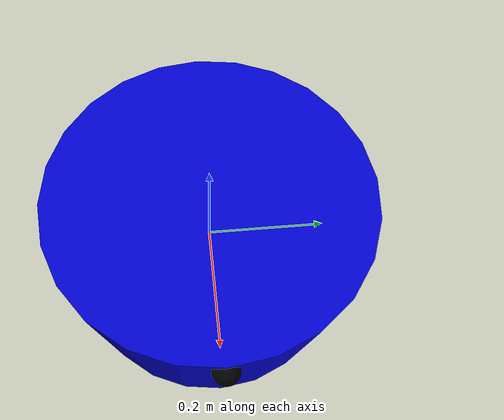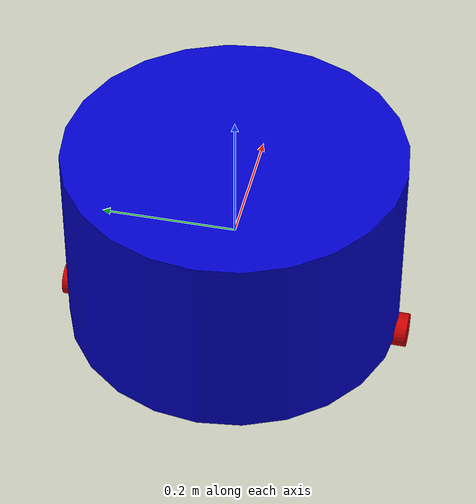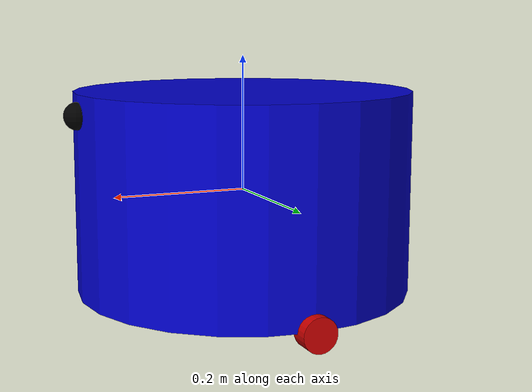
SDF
<?xml version='1.0'?>
<sdf version='1.7'>
  <model name='my_rb1_robot'>
    <link name='base_link'>
      <inertial>
        <pose>0 0 0 0 -0 0</pose>
        <mass>1</mass>
        <inertia>
          <ixx>1</ixx>
          <ixy>0</ixy>
          <ixz>0</ixz>
          <iyy>1</iyy>
          <iyz>0</iyz>
          <izz>1</izz>
        </inertia>
      </inertial>
      <self_collide>0</self_collide>
      <enable_wind>0</enable_wind>
      <kinematic>0</kinematic>
      <pose>0 0 0 -0 -0 -0</pose>
      <gravity>1</gravity>
      <visual name='base_link_visual'>
        <pose>0 0 0 0 -0 0</pose>
        <geometry>
          <cylinder>
            <length>0.3</length>
            <radius>0.25</radius>
          </cylinder>
        </geometry>
        <material>
          <shader type='pixel'>
            <normal_map>__default__</normal_map>
          </shader>
          <script>
            <name>ModelPreview_1::base_link::base_link_visual_MATERIAL_</name>
          </script>
          <ambient>0 0 0.8 1</ambient>
          <diffuse>0 0 0.8 1</diffuse>
          <specular>0 0 0.8 1</specular>
          <emissive>0 0 0.8 1</emissive>
        </material>
        <transparency>0</transparency>
        <cast_shadows>1</cast_shadows>
      </visual>
      <collision name='base_link_collision'>
        <laser_retro>0</laser_retro>
        <max_contacts>10</max_contacts>
        <pose>0 0 0 0 -0 0</pose>
        <geometry>
          <cylinder>
            <radius>0.25</radius>
            <length>0.3</length>
          </cylinder>
        </geometry>
        <surface>
          <friction>
            <ode>
              <mu>1</mu>
              <mu2>1</mu2>
              <fdir1>0 0 0</fdir1>
              <slip1>0</slip1>
              <slip2>0</slip2>
            </ode>
            <torsional>
              <coefficient>1</coefficient>
              <patch_radius>0</patch_radius>
              <surface_radius>0</surface_radius>
              <use_patch_radius>1</use_patch_radius>
              <ode>
                <slip>0</slip>
              </ode>
            </torsional>
          </friction>
          <bounce>
            <restitution_coefficient>0</restitution_coefficient>
            <threshold>1e+06</threshold>
          </bounce>
          <contact>
            <collide_without_contact>0</collide_without_contact>
            <collide_without_contact_bitmask>1</collide_without_contact_bitmask>
            <collide_bitmask>1</collide_bitmask>
            <ode>
              <soft_cfm>0</soft_cfm>
              <soft_erp>0.2</soft_erp>
              <kp>1e+13</kp>
              <kd>1</kd>
              <max_vel>0.01</max_vel>
              <min_depth>0</min_depth>
            </ode>
            <bullet>
              <split_impulse>1</split_impulse>
              <split_impulse_penetration_threshold>-0.01</split_impulse_penetration_threshold>
              <soft_cfm>0</soft_cfm>
              <soft_erp>0.2</soft_erp>
              <kp>1e+13</kp>
              <kd>1</kd>
            </bullet>
          </contact>
        </surface>
      </collision>
    </link>
    <link name='back_caster'>
      <pose>-0.1 -0 -0.15 -0 -0 -0</pose>
      <inertial>
        <pose>0 0 0 0 -0 0</pose>
        <mass>0.01</mass>
        <inertia>
          <ixx>0.0001</ixx>
          <ixy>0</ixy>
          <ixz>0</ixz>
          <iyy>0.0001</iyy>
          <iyz>0</iyz>
          <izz>0.0001</izz>
        </inertia>
      </inertial>
      <self_collide>0</self_collide>
      <enable_wind>0</enable_wind>
      <kinematic>0</kinematic>
      <gravity>1</gravity>
      <visual name='back_caster_visual'>
        <pose>0 0 0 0 -0 0</pose>
        <geometry>
          <sphere>
            <radius>0.025</radius>
          </sphere>
        </geometry>
        <material>
          <shader type='pixel'>
            <normal_map>__default__</normal_map>
          </shader>
          <script>
            <name>ModelPreview_1::back_caster::back_caster_visual_MATERIAL_</name>
          </script>
          <ambient>0 0 0 1</ambient>
          <diffuse>0 0 0 1</diffuse>
          <specular>0 0 0 1</specular>
          <emissive>0 0 0 1</emissive>
        </material>
        <transparency>0</transparency>
        <cast_shadows>1</cast_shadows>
      </visual>
      <collision name='back_caster_collision'>
        <laser_retro>0</laser_retro>
        <max_contacts>10</max_contacts>
        <pose>0 0 0 0 -0 0</pose>
        <geometry>
          <sphere>
            <radius>0.025</radius>
          </sphere>
        </geometry>
        <surface>
          <friction>
            <ode>
              <mu>1</mu>
              <mu2>1</mu2>
              <fdir1>0 0 0</fdir1>
              <slip1>0</slip1>
              <slip2>0</slip2>
            </ode>
            <torsional>
              <coefficient>1</coefficient>
              <patch_radius>0</patch_radius>
              <surface_radius>0</surface_radius>
              <use_patch_radius>1</use_patch_radius>
              <ode>
                <slip>0</slip>
              </ode>
            </torsional>
          </friction>
          <bounce>
            <restitution_coefficient>0</restitution_coefficient>
            <threshold>1e+06</threshold>
          </bounce>
          <contact>
            <collide_without_contact>0</collide_without_contact>
            <collide_without_contact_bitmask>1</collide_without_contact_bitmask>
            <collide_bitmask>1</collide_bitmask>
            <ode>
              <soft_cfm>0</soft_cfm>
              <soft_erp>0.2</soft_erp>
              <kp>1e+13</kp>
              <kd>1</kd>
              <max_vel>0.01</max_vel>
              <min_depth>0</min_depth>
            </ode>
            <bullet>
              <split_impulse>1</split_impulse>
              <split_impulse_penetration_threshold>-0.01</split_impulse_penetration_threshold>
              <soft_cfm>0</soft_cfm>
              <soft_erp>0.2</soft_erp>
              <kp>1e+13</kp>
              <kd>1</kd>
            </bullet>
          </contact>
        </surface>
      </collision>
    </link>
    <link name='front_caster'>
      <pose>0.1 0 -0.15 -0 -0 -0</pose>
      <inertial>
        <pose>0 0 0 0 -0 0</pose>
        <mass>0.01</mass>
        <inertia>
          <ixx>0.0001</ixx>
          <ixy>0</ixy>
          <ixz>0</ixz>
          <iyy>0.0001</iyy>
          <iyz>0</iyz>
          <izz>0.0001</izz>
        </inertia>
      </inertial>
      <self_collide>0</self_collide>
      <enable_wind>0</enable_wind>
      <kinematic>0</kinematic>
      <gravity>1</gravity>
      <visual name='front_caster_visual'>
        <pose>0 0 0 0 -0 0</pose>
        <geometry>
          <sphere>
            <radius>0.025</radius>
          </sphere>
        </geometry>
        <material>
          <shader type='pixel'>
            <normal_map>__default__</normal_map>
          </shader>
          <script>
            <name>ModelPreview_1::front_caster::front_caster_visual_MATERIAL_</name>
          </script>
          <ambient>0 0 0 1</ambient>
          <diffuse>0 0 0 1</diffuse>
          <specular>0 0 0 1</specular>
          <emissive>0 0 0 1</emissive>
        </material>
        <transparency>0</transparency>
        <cast_shadows>1</cast_shadows>
      </visual>
      <collision name='front_caster_collision'>
        <laser_retro>0</laser_retro>
        <max_contacts>10</max_contacts>
        <pose>0 0 0 0 -0 0</pose>
        <geometry>
          <sphere>
            <radius>0.025</radius>
          </sphere>
        </geometry>
        <surface>
          <friction>
            <ode>
              <mu>1</mu>
              <mu2>1</mu2>
              <fdir1>0 0 0</fdir1>
              <slip1>0</slip1>
              <slip2>0</slip2>
            </ode>
            <torsional>
              <coefficient>1</coefficient>
              <patch_radius>0</patch_radius>
              <surface_radius>0</surface_radius>
              <use_patch_radius>1</use_patch_radius>
              <ode>
                <slip>0</slip>
              </ode>
            </torsional>
          </friction>
          <bounce>
            <restitution_coefficient>0</restitution_coefficient>
            <threshold>1e+06</threshold>
          </bounce>
          <contact>
            <collide_without_contact>0</collide_without_contact>
            <collide_without_contact_bitmask>1</collide_without_contact_bitmask>
            <collide_bitmask>1</collide_bitmask>
            <ode>
              <soft_cfm>0</soft_cfm>
              <soft_erp>0.2</soft_erp>
              <kp>1e+13</kp>
              <kd>1</kd>
              <max_vel>0.01</max_vel>
              <min_depth>0</min_depth>
            </ode>
            <bullet>
              <split_impulse>1</split_impulse>
              <split_impulse_penetration_threshold>-0.01</split_impulse_penetration_threshold>
              <soft_cfm>0</soft_cfm>
              <soft_erp>0.2</soft_erp>
              <kp>1e+13</kp>
              <kd>1</kd>
            </bullet>
          </contact>
        </surface>
      </collision>
    </link>
    <link name='front_laser'>
      <pose>0.25 0 0.12 -0 -0 -0</pose>
      <inertial>
        <pose>0 0 0 0 -0 0</pose>
        <mass>0.01</mass>
        <inertia>
          <ixx>1e-05</ixx>
          <ixy>0</ixy>
          <ixz>0</ixz>
          <iyy>1e-05</iyy>
          <iyz>0</iyz>
          <izz>1e-05</izz>
        </inertia>
      </inertial>
      <self_collide>0</self_collide>
      <enable_wind>0</enable_wind>
      <kinematic>0</kinematic>
      <gravity>1</gravity>
      <visual name='front_laser_visual'>
        <pose>0 0 0 0 -0 0</pose>
        <geometry>
          <sphere>
            <radius>0.02</radius>
          </sphere>
        </geometry>
        <material>
          <shader type='pixel'>
            <normal_map>__default__</normal_map>
          </shader>
          <script>
            <name>ModelPreview_1::front_laser::front_laser_visual_MATERIAL_</name>
          </script>
          <ambient>0 0 0 1</ambient>
          <diffuse>0 0 0 1</diffuse>
          <specular>0 0 0 1</specular>
          <emissive>0 0 0 1</emissive>
        </material>
        <transparency>0</transparency>
        <cast_shadows>1</cast_shadows>
      </visual>
      <collision name='front_laser_collision'>
        <laser_retro>0</laser_retro>
        <max_contacts>10</max_contacts>
        <pose>0 0 0 0 -0 0</pose>
        <geometry>
          <sphere>
            <radius>0.02</radius>
          </sphere>
        </geometry>
        <surface>
          <friction>
            <ode>
              <mu>1</mu>
              <mu2>1</mu2>
              <fdir1>0 0 0</fdir1>
              <slip1>0</slip1>
              <slip2>0</slip2>
            </ode>
            <torsional>
              <coefficient>1</coefficient>
              <patch_radius>0</patch_radius>
              <surface_radius>0</surface_radius>
              <use_patch_radius>1</use_patch_radius>
              <ode>
                <slip>0</slip>
              </ode>
            </torsional>
          </friction>
          <bounce>
            <restitution_coefficient>0</restitution_coefficient>
            <threshold>1e+06</threshold>
          </bounce>
          <contact>
            <collide_without_contact>0</collide_without_contact>
            <collide_without_contact_bitmask>1</collide_without_contact_bitmask>
            <collide_bitmask>1</collide_bitmask>
            <ode>
              <soft_cfm>0</soft_cfm>
              <soft_erp>0.2</soft_erp>
              <kp>1e+13</kp>
              <kd>1</kd>
              <max_vel>0.01</max_vel>
              <min_depth>0</min_depth>
            </ode>
            <bullet>
              <split_impulse>1</split_impulse>
              <split_impulse_penetration_threshold>-0.01</split_impulse_penetration_threshold>
              <soft_cfm>0</soft_cfm>
              <soft_erp>0.2</soft_erp>
              <kp>1e+13</kp>
              <kd>1</kd>
            </bullet>
          </contact>
        </surface>
      </collision>
    </link>
    <link name='left_wheel'>
      <pose>-0 -0.25 -0.15 -0 -0 -0</pose>
      <inertial>
        <pose>0 0 0 0 -0 0</pose>
        <mass>0.1</mass>
        <inertia>
          <ixx>0.001</ixx>
          <ixy>0</ixy>
          <ixz>0</ixz>
          <iyy>0.001</iyy>
          <iyz>0</iyz>
          <izz>0.001</izz>
        </inertia>
      </inertial>
      <self_collide>0</self_collide>
      <enable_wind>0</enable_wind>
      <kinematic>0</kinematic>
      <gravity>1</gravity>
      <visual name='left_wheel_visual'>
        <pose>0 0 0 1.57075 -0 0</pose>
        <geometry>
          <cylinder>
            <length>0.03</length>
            <radius>0.025</radius>
          </cylinder>
        </geometry>
        <material>
          <shader type='pixel'>
            <normal_map>__default__</normal_map>
          </shader>
          <script>
            <name>ModelPreview_1::left_wheel::left_wheel_visual_MATERIAL_</name>
          </script>
          <ambient>0.8 0 0 1</ambient>
          <diffuse>0.8 0 0 1</diffuse>
          <specular>0.8 0 0 1</specular>
          <emissive>0.8 0 0 1</emissive>
        </material>
        <transparency>0</transparency>
        <cast_shadows>1</cast_shadows>
      </visual>
      <collision name='left_wheel_collision'>
        <laser_retro>0</laser_retro>
        <max_contacts>10</max_contacts>
        <pose>0 0 0 0 -0 0</pose>
        <geometry>
          <cylinder>
            <radius>0.025</radius>
            <length>0.03</length>
          </cylinder>
        </geometry>
        <surface>
          <friction>
            <ode>
              <mu>1</mu>
              <mu2>1</mu2>
              <fdir1>0 0 0</fdir1>
              <slip1>0</slip1>
              <slip2>0</slip2>
            </ode>
            <torsional>
              <coefficient>1</coefficient>
              <patch_radius>0</patch_radius>
              <surface_radius>0</surface_radius>
              <use_patch_radius>1</use_patch_radius>
              <ode>
                <slip>0</slip>
              </ode>
            </torsional>
          </friction>
          <bounce>
            <restitution_coefficient>0</restitution_coefficient>
            <threshold>1e+06</threshold>
          </bounce>
          <contact>
            <collide_without_contact>0</collide_without_contact>
            <collide_without_contact_bitmask>1</collide_without_contact_bitmask>
            <collide_bitmask>1</collide_bitmask>
            <ode>
              <soft_cfm>0</soft_cfm>
              <soft_erp>0.2</soft_erp>
              <kp>1e+13</kp>
              <kd>1</kd>
              <max_vel>0.01</max_vel>
              <min_depth>0</min_depth>
            </ode>
            <bullet>
              <split_impulse>1</split_impulse>
              <split_impulse_penetration_threshold>-0.01</split_impulse_penetration_threshold>
              <soft_cfm>0</soft_cfm>
              <soft_erp>0.2</soft_erp>
              <kp>1e+13</kp>
              <kd>1</kd>
            </bullet>
          </contact>
        </surface>
      </collision>
    </link>
    <link name='right_wheel'>
      <pose>0 0.25 -0.15 -0 -0 -0</pose>
      <inertial>
        <pose>0 0 0 0 -0 0</pose>
        <mass>0.1</mass>
        <inertia>
          <ixx>0.001</ixx>
          <ixy>0</ixy>
          <ixz>0</ixz>
          <iyy>0.001</iyy>
          <iyz>0</iyz>
          <izz>0.001</izz>
        </inertia>
      </inertial>
      <self_collide>0</self_collide>
      <enable_wind>0</enable_wind>
      <kinematic>0</kinematic>
      <gravity>1</gravity>
      <visual name='right_wheel_visual'>
        <pose>0 0 0 1.57075 -0 0</pose>
        <geometry>
          <cylinder>
            <length>0.03</length>
            <radius>0.025</radius>
          </cylinder>
        </geometry>
        <material>
          <shader type='pixel'>
            <normal_map>__default__</normal_map>
          </shader>
          <script>
            <name>ModelPreview_1::right_wheel::right_wheel_visual_MATERIAL_</name>
          </script>
          <ambient>0.8 0 0 1</ambient>
          <diffuse>0.8 0 0 1</diffuse>
          <specular>0.8 0 0 1</specular>
          <emissive>0.8 0 0 1</emissive>
        </material>
        <transparency>0</transparency>
        <cast_shadows>1</cast_shadows>
      </visual>
      <collision name='right_wheel_collision'>
        <laser_retro>0</laser_retro>
        <max_contacts>10</max_contacts>
        <pose>0 0 0 0 -0 0</pose>
        <geometry>
          <cylinder>
            <radius>0.025</radius>
            <length>0.03</length>
          </cylinder>
        </geometry>
        <surface>
          <friction>
            <ode>
              <mu>1</mu>
              <mu2>1</mu2>
              <fdir1>0 0 0</fdir1>
              <slip1>0</slip1>
              <slip2>0</slip2>
            </ode>
            <torsional>
              <coefficient>1</coefficient>
              <patch_radius>0</patch_radius>
              <surface_radius>0</surface_radius>
              <use_patch_radius>1</use_patch_radius>
              <ode>
                <slip>0</slip>
              </ode>
            </torsional>
          </friction>
          <bounce>
            <restitution_coefficient>0</restitution_coefficient>
            <threshold>1e+06</threshold>
          </bounce>
          <contact>
            <collide_without_contact>0</collide_without_contact>
            <collide_without_contact_bitmask>1</collide_without_contact_bitmask>
            <collide_bitmask>1</collide_bitmask>
            <ode>
              <soft_cfm>0</soft_cfm>
              <soft_erp>0.2</soft_erp>
              <kp>1e+13</kp>
              <kd>1</kd>
              <max_vel>0.01</max_vel>
              <min_depth>0</min_depth>
            </ode>
            <bullet>
              <split_impulse>1</split_impulse>
              <split_impulse_penetration_threshold>-0.01</split_impulse_penetration_threshold>
              <soft_cfm>0</soft_cfm>
              <soft_erp>0.2</soft_erp>
              <kp>1e+13</kp>
              <kd>1</kd>
            </bullet>
          </contact>
        </surface>
      </collision>
    </link>
    <joint name='joint_back_caster' type='revolute'>
      <parent>base_link</parent>
      <child>back_caster</child>
      <pose>0 0 0 0 -0 0</pose>
      <axis>
        <xyz>1 1 0</xyz>
        <limit>
          <lower>-1e+16</lower>
          <upper>1e+16</upper>
          <effort>-1</effort>
          <velocity>-1</velocity>
        </limit>
        <dynamics>
          <spring_reference>0</spring_reference>
          <spring_stiffness>0</spring_stiffness>
          <damping>0</damping>
          <friction>0</friction>
        </dynamics>
      </axis>
      <physics>
        <ode>
          <limit>
            <cfm>0</cfm>
            <erp>0.2</erp>
          </limit>
          <suspension>
            <cfm>0</cfm>
            <erp>0.2</erp>
          </suspension>
        </ode>
      </physics>
    </joint>
    <joint name='joint_front_caster' type='revolute'>
      <parent>base_link</parent>
      <child>front_caster</child>
      <pose>0 0 0 0 -0 0</pose>
      <axis>
        <xyz>1 1 0</xyz>
        <limit>
          <lower>-1e+16</lower>
          <upper>1e+16</upper>
          <effort>-1</effort>
          <velocity>-1</velocity>
        </limit>
        <dynamics>
          <spring_reference>0</spring_reference>
          <spring_stiffness>0</spring_stiffness>
          <damping>0</damping>
          <friction>0</friction>
        </dynamics>
      </axis>
      <physics>
        <ode>
          <limit>
            <cfm>0</cfm>
            <erp>0.2</erp>
          </limit>
          <suspension>
            <cfm>0</cfm>
            <erp>0.2</erp>
          </suspension>
        </ode>
      </physics>
    </joint>
    <joint name='joint_front_laser' type='revolute'>
      <parent>base_link</parent>
      <child>front_laser</child>
      <pose>0 0 0 0 -0 0</pose>
      <axis>
        <xyz>1 0 1</xyz>
        <limit>
          <lower>-1e+16</lower>
          <upper>1e+16</upper>
          <effort>-1</effort>
          <velocity>-1</velocity>
        </limit>
        <dynamics>
          <spring_reference>0</spring_reference>
          <spring_stiffness>0</spring_stiffness>
          <damping>0</damping>
          <friction>0</friction>
        </dynamics>
      </axis>
      <physics>
        <ode>
          <limit>
            <cfm>0</cfm>
            <erp>0.2</erp>
          </limit>
          <suspension>
            <cfm>0</cfm>
            <erp>0.2</erp>
          </suspension>
        </ode>
      </physics>
    </joint>
    <joint name='joint_left_wheel' type='revolute'>
      <parent>base_link</parent>
      <child>left_wheel</child>
      <pose>0 0 0 0 -0 0</pose>
      <axis>
        <xyz>0 1 0</xyz>
        <limit>
          <lower>-1e+16</lower>
          <upper>1e+16</upper>
          <effort>-1</effort>
          <velocity>-1</velocity>
        </limit>
        <dynamics>
          <spring_reference>0</spring_reference>
          <spring_stiffness>0</spring_stiffness>
          <damping>0</damping>
          <friction>0</friction>
        </dynamics>
      </axis>
      <physics>
        <ode>
          <limit>
            <cfm>0</cfm>
            <erp>0.2</erp>
          </limit>
          <suspension>
            <cfm>0</cfm>
            <erp>0.2</erp>
          </suspension>
        </ode>
      </physics>
    </joint>
    <joint name='joint_right_wheel' type='revolute'>
      <parent>base_link</parent>
      <child>right_wheel</child>
      <pose>0 0 0 0 -0 0</pose>
      <axis>
        <xyz>0 1 0</xyz>
        <limit>
          <lower>-1e+16</lower>
          <upper>1e+16</upper>
          <effort>-1</effort>
          <velocity>-1</velocity>
        </limit>
        <dynamics>
          <spring_reference>0</spring_reference>
          <spring_stiffness>0</spring_stiffness>
          <damping>0</damping>
          <friction>0</friction>
        </dynamics>
      </axis>
      <physics>
        <ode>
          <limit>
            <cfm>0</cfm>
            <erp>0.2</erp>
          </limit>
          <suspension>
            <cfm>0</cfm>
            <erp>0.2</erp>
          </suspension>
        </ode>
      </physics>
    </joint>
    <static>0</static>
    <allow_auto_disable>1</allow_auto_disable>
  </model>
</sdf>
